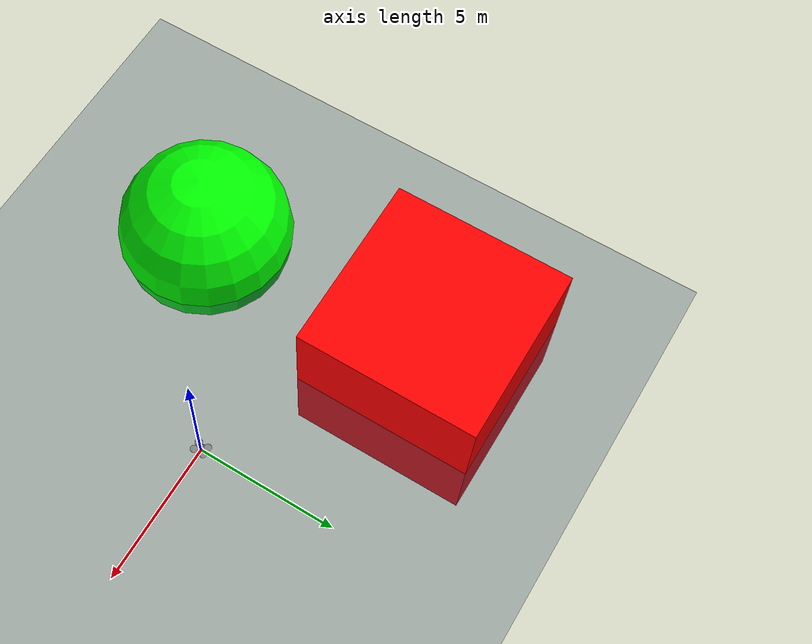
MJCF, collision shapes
<mujoco model="Skydio Drone">
    <compiler autolimits="true" assetdir="assets"/>
    <option timestep="0.01" density="1.225" viscosity="1.8e-5">
        <flag contact="enable"/>
    </option>

    <statistic center="0 0 0.1" extent="0.6" meansize=".05"/>

    <default>
        <default class="x2">
            <geom mass="0"/>
            <motor ctrlrange="0 13"/>
            <mesh scale="0.01 0.01 0.01"/>
            <default class="visual">
                <geom group="2" type="mesh" contype="0" conaffinity="0"/>
            </default>
            <default class="collision">
                <geom group="3" type="box"/>
                <default class="rotor">
                    <geom type="ellipsoid" size=".13 .13 .01"/>
                </default>
            </default>
            <site group="5"/>
        </default>
    </default>

    <asset>
        <texture  name="grid" type="2d" builtin="checker" width="512" height="512" rgb1=".1 .2 .3" rgb2=".2 .3 .4"/>
        <material name="grid" texture="grid" texrepeat="1 1" texuniform="true" reflectance=".2"/>
        <!-- sets the sky -->
        <texture  name="skybox" type="skybox" builtin="gradient" rgb1=".3 .5 .7" rgb2="0 0 0" width="512" height="512"/>
        <texture type="2d" file="X2_lowpoly_texture_SpinningProps_1024.png"/>
        <material name="phong3SG" texture="X2_lowpoly_texture_SpinningProps_1024"/>
        <material name="invisible" rgba="0 0 0 0"/>
        <mesh class="x2" file="X2_lowpoly.obj"/>

        <texture type="2d" name="groundplane" builtin="checker" mark="edge" rgb1="0.2 0.3 0.4" rgb2="0.1 0.2 0.3"
            markrgb="0.8 0.8 0.8" width="300" height="300"/>
        <material name="groundplane" texture="groundplane" texuniform="true" texrepeat="5 5" reflectance="0.2"/>
    </asset>

    <worldbody>

        <light pos="0 0 1.5" dir="0 0 -1" directional="true"/>
        <geom name="floor" size="0 0 0.05" type="plane" material="groundplane"/>

        <light name="spotlight" mode="targetbodycom" target="x2" pos="0 -1 2"/>

        <geom name="red_box" type="box" pos="-7.0 4.5 0.0" size="3.2 3.2 3.2" rgba="1 0 0 1"/>
        <geom name="green_sphere"       pos="-7.0 -4.5 0.0" size="3.1" rgba="0 1 0 1"/>

        <body name="x2" pos="0 0 0.1" childclass="x2">
            <freejoint/>
            <inertial pos="0 0 0" mass="0.2" diaginertia="0.002 0.002 0.004"/>
            <camera name="stream" pos="0 0 .2" euler="0 90 90" />
            <camera name="track"  pos="-1 0 .5" xyaxes="0 -1 0 1 0 2" mode="trackcom"/>
            <site name="imu" pos="0 0 .02"/>
            <geom material="phong3SG" mesh="X2_lowpoly" class="visual" quat="0 0 1 1"/>
            <geom class="collision" size=".06 .027 .02"  pos=".04 0 .02"/>
            <geom class="collision" size=".06 .027 .02"  pos=".04 0 .06"/>
            <geom class="collision" size=".05 .027 .02"  pos="-.07 0 .065"/>
            <geom class="collision" size=".023 .017 .01" pos="-.137 .008 .065" quat="1 0 0 1"/>
            <geom name="rotor1" class="rotor" pos="-.14 -.18 .05" mass=".25"/>
            <geom name="rotor2" class="rotor" pos="-.14 .18 .05" mass=".25"/>
            <geom name="rotor3" class="rotor" pos=".14 .18 .08" mass=".25"/>
            <geom name="rotor4" class="rotor" pos=".14 -.18 .08" mass=".25"/>
            <geom size=".16 .04 .02" pos="0 0 0.02" type="ellipsoid" mass=".325" class="visual" material="invisible"/>
            <site name="thrust1" pos="-.14 -.18 .05"/>
            <site name="thrust2" pos="-.14  .18 .05"/>
            <site name="thrust3" pos=" .14  .18 .08"/>
            <site name="thrust4" pos=" .14 -.18 .08"/>
        </body>
    </worldbody>

    <actuator>
        <motor class="x2" name="thrust1" site="thrust1" gear="0 0 1 0 0 .0201"/>
        <motor class="x2" name="thrust2" site="thrust2" gear="0 0 1 0 0 -.0201"/>
        <motor class="x2" name="thrust3" site="thrust3" gear="0 0 1 0 0 .0201"/>
        <motor class="x2" name="thrust4" site="thrust4" gear="0 0 1 0 0 -.0201"/>
    </actuator>

    <sensor>
        <gyro name="body_gyro" site="imu"/>
        <accelerometer name="body_linacc" site="imu"/>
        <framequat name="body_quat" objtype="site" objname="imu"/>
    </sensor>

    <keyframe>
        <key name="hover" qpos="0 0 .3 1 0 0 0" ctrl="3.2495625 3.2495625 3.2495625 3.2495625"/>
    </keyframe>

    <visual>
        <headlight diffuse="0.8 0.8 0.8" ambient="0.3 0.3 0.3" specular="0 0 0"/>
        <rgba haze="0.15 0.25 0.35 1"/>
        <global azimuth="-20" elevation="-20" ellipsoidinertia="true"/>
    </visual>

</mujoco>
